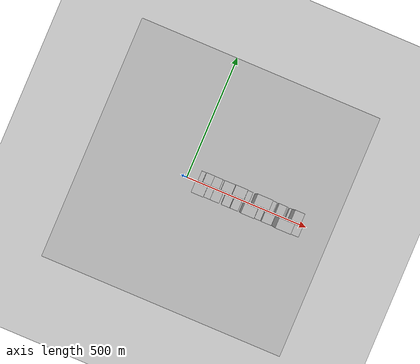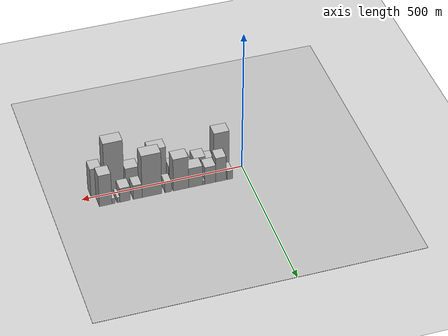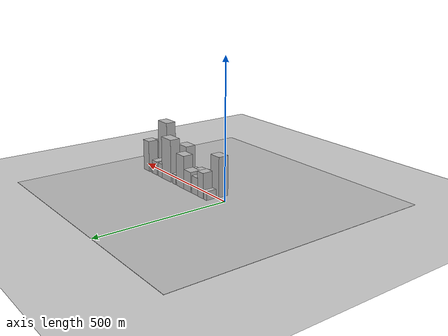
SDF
<?xml version="1.0" encoding="utf-8"?>

<sdf version="1.6">

   <world name="default">

      <gui fullscreen="0">

         <camera name="user_camera">

            <pose>-15 0 4.57585 0 0 0</pose>

            <view_controller>orbit</view_controller>

         </camera>

      </gui>

      <scene>

         <sky>

           <clouds>

             <speed>12</speed>

           </clouds>

         </sky>

         <ambient>0.4 0.4 0.4 1</ambient>

         <background>0.7 0.7 0.7 1</background>

         <shadows>1</shadows>

      </scene>

      <gravity>0 0 -9.8066</gravity>

      <magnetic_field>6e-06 2.3e-05 -4.2e-05</magnetic_field>

      <physics default="0" name="default_physics" type="ode">

         <ode>

            <solver>

               <type>quick</type>

               <iters>10</iters>

               <sor>1.0</sor>

               <use_dynamic_moi_rescaling>0</use_dynamic_moi_rescaling>

            </solver>

            <constraints>

               <cfm>0</cfm>

               <erp>0.2</erp>

               <contact_max_correcting_vel>100</contact_max_correcting_vel>

               <contact_surface_layer>0.001</contact_surface_layer>

            </constraints>

         </ode>

         <max_step_size>0.004</max_step_size>

         <real_time_factor>1</real_time_factor>

         <real_time_update_rate>250</real_time_update_rate>

      </physics>

      <light name="sun" type="directional">

         <cast_shadows>1</cast_shadows>

         <pose>0 0 10 0 0 0</pose>

         <diffuse>0.8 0.8 0.8 1</diffuse>

         <specular>0.2 0.2 0.2 1</specular>

         <attenuation>

            <range>1000</range>

            <constant>0.9</constant>

            <linear>0.01</linear>

            <quadratic>0.001</quadratic>

         </attenuation>

         <direction>-0.5 0.1 -0.9</direction>

      </light>

      <include>

         <name>ground_plane_1</name>

         <uri>model://HANNAS_ground_plane</uri>

         <pose>0 0 0  0 0 0</pose>

      </include>

      <include>

         <name>ground_plane_2</name>

         <uri>model://HANNAS_ground_plane</uri>

         <pose>100 0 0  0 0 0</pose>

      </include>

      <model name="building_1">

         <static>1</static>

         <pose frame="">53.0184 24.5000 0 0.000000 0.000000 1.570796</pose>

         <link name="link">

            <pose frame="">0 0 16.50 0 0 0</pose>

            <collision name="collision">

               <geometry>

                  <box>

                     <size>40.0000 18.0367 33.0000</size>

                  </box>

               </geometry>

               <max_contacts>10</max_contacts>

               <surface>

                  <contact>

                     <ode/>

                  </contact>

                  <bounce/>

                  <friction>

                     <torsional>

                        <ode/>

                     </torsional>

                     <ode/>

                  </friction>

               </surface>

            </collision>

            <visual name="visual">

               <cast_shadows>0</cast_shadows>

               <geometry>

                  <box>

                     <size>40.0000 18.0367 33.0000</size>

                  </box>

               </geometry>

               <material>

                  <script>

                     <uri>model://HANNAS_wall/materials/scripts</uri>

                     <uri>model://HANNAS_wall/materials/textures</uri>

                     <name>vrc/HANNAS_wall</name>

                  </script>

               </material>

            </visual>

            <self_collide>0</self_collide>

            <enable_wind>0</enable_wind>

            <kinematic>0</kinematic>

         </link>

      </model>

      <model name="building_2">

         <static>1</static>

         <pose frame="">81.3368 24.5000 0 0.000000 0.000000 1.570796</pose>

         <link name="link">

            <pose frame="">0 0 46.50 0 0 0</pose>

            <collision name="collision">

               <geometry>

                  <box>

                     <size>40.0000 32.6002 93.0000</size>

                  </box>

               </geometry>

               <max_contacts>10</max_contacts>

               <surface>

                  <contact>

                     <ode/>

                  </contact>

                  <bounce/>

                  <friction>

                     <torsional>

                        <ode/>

                     </torsional>

                     <ode/>

                  </friction>

               </surface>

            </collision>

            <visual name="visual">

               <cast_shadows>0</cast_shadows>

               <geometry>

                  <box>

                     <size>40.0000 32.6002 93.0000</size>

                  </box>

               </geometry>

               <material>

                  <script>

                     <uri>model://HANNAS_wall/materials/scripts</uri>

                     <uri>model://HANNAS_wall/materials/textures</uri>

                     <name>vrc/HANNAS_wall</name>

                  </script>

               </material>

            </visual>

            <self_collide>0</self_collide>

            <enable_wind>0</enable_wind>

            <kinematic>0</kinematic>

         </link>

      </model>

      <model name="building_3">

         <static>1</static>

         <pose frame="">114.7060 24.5000 0 0.000000 0.000000 1.570796</pose>

         <link name="link">

            <pose frame="">0 0 33.00 0 0 0</pose>

            <collision name="collision">

               <geometry>

                  <box>

                     <size>40.0000 34.1382 66.0000</size>

                  </box>

               </geometry>

               <max_contacts>10</max_contacts>

               <surface>

                  <contact>

                     <ode/>

                  </contact>

                  <bounce/>

                  <friction>

                     <torsional>

                        <ode/>

                     </torsional>

                     <ode/>

                  </friction>

               </surface>

            </collision>

            <visual name="visual">

               <cast_shadows>0</cast_shadows>

               <geometry>

                  <box>

                     <size>40.0000 34.1382 66.0000</size>

                  </box>

               </geometry>

               <material>

                  <script>

                     <uri>model://HANNAS_wall/materials/scripts</uri>

                     <uri>model://HANNAS_wall/materials/textures</uri>

                     <name>vrc/HANNAS_wall</name>

                  </script>

               </material>

            </visual>

            <self_collide>0</self_collide>

            <enable_wind>0</enable_wind>

            <kinematic>0</kinematic>

         </link>

      </model>

      <model name="building_4">

         <static>1</static>

         <pose frame="">135.4012 24.5000 0 0.000000 0.000000 1.570796</pose>

         <link name="link">

            <pose frame="">0 0 7.50 0 0 0</pose>

            <collision name="collision">

               <geometry>

                  <box>

                     <size>40.0000 7.2523 15.0000</size>

                  </box>

               </geometry>

               <max_contacts>10</max_contacts>

               <surface>

                  <contact>

                     <ode/>

                  </contact>

                  <bounce/>

                  <friction>

                     <torsional>

                        <ode/>

                     </torsional>

                     <ode/>

                  </friction>

               </surface>

            </collision>

            <visual name="visual">

               <cast_shadows>0</cast_shadows>

               <geometry>

                  <box>

                     <size>40.0000 7.2523 15.0000</size>

                  </box>

               </geometry>

               <material>

                  <script>

                     <uri>model://HANNAS_wall/materials/scripts</uri>

                     <uri>model://HANNAS_wall/materials/textures</uri>

                     <name>vrc/HANNAS_wall</name>

                  </script>

               </material>

            </visual>

            <self_collide>0</self_collide>

            <enable_wind>0</enable_wind>

            <kinematic>0</kinematic>

         </link>

      </model>

      <model name="building_5">

         <static>1</static>

         <pose frame="">160.9136 24.5000 0 0.000000 0.000000 1.570796</pose>

         <link name="link">

            <pose frame="">0 0 37.50 0 0 0</pose>

            <collision name="collision">

               <geometry>

                  <box>

                     <size>40.0000 43.7724 75.0000</size>

                  </box>

               </geometry>

               <max_contacts>10</max_contacts>

               <surface>

                  <contact>

                     <ode/>

                  </contact>

                  <bounce/>

                  <friction>

                     <torsional>

                        <ode/>

                     </torsional>

                     <ode/>

                  </friction>

               </surface>

            </collision>

            <visual name="visual">

               <cast_shadows>0</cast_shadows>

               <geometry>

                  <box>

                     <size>40.0000 43.7724 75.0000</size>

                  </box>

               </geometry>

               <material>

                  <script>

                     <uri>model://HANNAS_wall/materials/scripts</uri>

                     <uri>model://HANNAS_wall/materials/textures</uri>

                     <name>vrc/HANNAS_wall</name>

                  </script>

               </material>

            </visual>

            <self_collide>0</self_collide>

            <enable_wind>0</enable_wind>

            <kinematic>0</kinematic>

         </link>

      </model>

      <model name="building_6">

         <static>1</static>

         <pose frame="">206.5788 24.5000 0 0.000000 0.000000 1.570796</pose>

         <link name="link">

            <pose frame="">0 0 61.50 0 0 0</pose>

            <collision name="collision">

               <geometry>

                  <box>

                     <size>40.0000 47.5581 123.0000</size>

                  </box>

               </geometry>

               <max_contacts>10</max_contacts>

               <surface>

                  <contact>

                     <ode/>

                  </contact>

                  <bounce/>

                  <friction>

                     <torsional>

                        <ode/>

                     </torsional>

                     <ode/>

                  </friction>

               </surface>

            </collision>

            <visual name="visual">

               <cast_shadows>0</cast_shadows>

               <geometry>

                  <box>

                     <size>40.0000 47.5581 123.0000</size>

                  </box>

               </geometry>

               <material>

                  <script>

                     <uri>model://HANNAS_wall/materials/scripts</uri>

                     <uri>model://HANNAS_wall/materials/textures</uri>

                     <name>vrc/HANNAS_wall</name>

                  </script>

               </material>

            </visual>

            <self_collide>0</self_collide>

            <enable_wind>0</enable_wind>

            <kinematic>0</kinematic>

         </link>

      </model>

      <model name="building_7">

         <static>1</static>

         <pose frame="">245.8811 24.5000 0 0.000000 0.000000 1.570796</pose>

         <link name="link">

            <pose frame="">0 0 19.50 0 0 0</pose>

            <collision name="collision">

               <geometry>

                  <box>

                     <size>40.0000 21.0465 39.0000</size>

                  </box>

               </geometry>

               <max_contacts>10</max_contacts>

               <surface>

                  <contact>

                     <ode/>

                  </contact>

                  <bounce/>

                  <friction>

                     <torsional>

                        <ode/>

                     </torsional>

                     <ode/>

                  </friction>

               </surface>

            </collision>

            <visual name="visual">

               <cast_shadows>0</cast_shadows>

               <geometry>

                  <box>

                     <size>40.0000 21.0465 39.0000</size>

                  </box>

               </geometry>

               <material>

                  <script>

                     <uri>model://HANNAS_wall/materials/scripts</uri>

                     <uri>model://HANNAS_wall/materials/textures</uri>

                     <name>vrc/HANNAS_wall</name>

                  </script>

               </material>

            </visual>

            <self_collide>0</self_collide>

            <enable_wind>0</enable_wind>

            <kinematic>0</kinematic>

         </link>

      </model>

      <model name="building_8">

         <static>1</static>

         <pose frame="">296.7148 24.5000 0 0.000000 0.000000 1.570796</pose>

         <link name="link">

            <pose frame="">0 0 81.00 0 0 0</pose>

            <collision name="collision">

               <geometry>

                  <box>

                     <size>40.0000 60.6208 162.0000</size>

                  </box>

               </geometry>

               <max_contacts>10</max_contacts>

               <surface>

                  <contact>

                     <ode/>

                  </contact>

                  <bounce/>

                  <friction>

                     <torsional>

                        <ode/>

                     </torsional>

                     <ode/>

                  </friction>

               </surface>

            </collision>

            <visual name="visual">

               <cast_shadows>0</cast_shadows>

               <geometry>

                  <box>

                     <size>40.0000 60.6208 162.0000</size>

                  </box>

               </geometry>

               <material>

                  <script>

                     <uri>model://HANNAS_wall/materials/scripts</uri>

                     <uri>model://HANNAS_wall/materials/textures</uri>

                     <name>vrc/HANNAS_wall</name>

                  </script>

               </material>

            </visual>

            <self_collide>0</self_collide>

            <enable_wind>0</enable_wind>

            <kinematic>0</kinematic>

         </link>

      </model>

      <model name="building_9">

         <static>1</static>

         <pose frame="">340.6502 24.5000 0 0.000000 0.000000 1.570796</pose>

         <link name="link">

            <pose frame="">0 0 27.00 0 0 0</pose>

            <collision name="collision">

               <geometry>

                  <box>

                     <size>40.0000 27.2500 54.0000</size>

                  </box>

               </geometry>

               <max_contacts>10</max_contacts>

               <surface>

                  <contact>

                     <ode/>

                  </contact>

                  <bounce/>

                  <friction>

                     <torsional>

                        <ode/>

                     </torsional>

                     <ode/>

                  </friction>

               </surface>

            </collision>

            <visual name="visual">

               <cast_shadows>0</cast_shadows>

               <geometry>

                  <box>

                     <size>40.0000 27.2500 54.0000</size>

                  </box>

               </geometry>

               <material>

                  <script>

                     <uri>model://HANNAS_wall/materials/scripts</uri>

                     <uri>model://HANNAS_wall/materials/textures</uri>

                     <name>vrc/HANNAS_wall</name>

                  </script>

               </material>

            </visual>

            <self_collide>0</self_collide>

            <enable_wind>0</enable_wind>

            <kinematic>0</kinematic>

         </link>

      </model>

      <model name="building_10">

         <static>1</static>

         <pose frame="">379.3620 24.5000 0 0.000000 0.000000 1.570796</pose>

         <link name="link">

            <pose frame="">0 0 27.00 0 0 0</pose>

            <collision name="collision">

               <geometry>

                  <box>

                     <size>40.0000 32.1737 54.0000</size>

                  </box>

               </geometry>

               <max_contacts>10</max_contacts>

               <surface>

                  <contact>

                     <ode/>

                  </contact>

                  <bounce/>

                  <friction>

                     <torsional>

                        <ode/>

                     </torsional>

                     <ode/>

                  </friction>

               </surface>

            </collision>

            <visual name="visual">

               <cast_shadows>0</cast_shadows>

               <geometry>

                  <box>

                     <size>40.0000 32.1737 54.0000</size>

                  </box>

               </geometry>

               <material>

                  <script>

                     <uri>model://HANNAS_wall/materials/scripts</uri>

                     <uri>model://HANNAS_wall/materials/textures</uri>

                     <name>vrc/HANNAS_wall</name>

                  </script>

               </material>

            </visual>

            <self_collide>0</self_collide>

            <enable_wind>0</enable_wind>

            <kinematic>0</kinematic>

         </link>

      </model>

      <model name="building_11">

         <static>1</static>

         <pose frame="">399.7748 24.5000 0 0.000000 0.000000 1.570796</pose>

         <link name="link">

            <pose frame="">0 0 10.50 0 0 0</pose>

            <collision name="collision">

               <geometry>

                  <box>

                     <size>40.0000 8.6518 21.0000</size>

                  </box>

               </geometry>

               <max_contacts>10</max_contacts>

               <surface>

                  <contact>

                     <ode/>

                  </contact>

                  <bounce/>

                  <friction>

                     <torsional>

                        <ode/>

                     </torsional>

                     <ode/>

                  </friction>

               </surface>

            </collision>

            <visual name="visual">

               <cast_shadows>0</cast_shadows>

               <geometry>

                  <box>

                     <size>40.0000 8.6518 21.0000</size>

                  </box>

               </geometry>

               <material>

                  <script>

                     <uri>model://HANNAS_wall/materials/scripts</uri>

                     <uri>model://HANNAS_wall/materials/textures</uri>

                     <name>vrc/HANNAS_wall</name>

                  </script>

               </material>

            </visual>

            <self_collide>0</self_collide>

            <enable_wind>0</enable_wind>

            <kinematic>0</kinematic>

         </link>

      </model>

      <model name="building_12">

         <static>1</static>

         <pose frame="">414.9263 24.5000 0 0.000000 0.000000 1.570796</pose>

         <link name="link">

            <pose frame="">0 0 10.50 0 0 0</pose>

            <collision name="collision">

               <geometry>

                  <box>

                     <size>40.0000 9.6511 21.0000</size>

                  </box>

               </geometry>

               <max_contacts>10</max_contacts>

               <surface>

                  <contact>

                     <ode/>

                  </contact>

                  <bounce/>

                  <friction>

                     <torsional>

                        <ode/>

                     </torsional>

                     <ode/>

                  </friction>

               </surface>

            </collision>

            <visual name="visual">

               <cast_shadows>0</cast_shadows>

               <geometry>

                  <box>

                     <size>40.0000 9.6511 21.0000</size>

                  </box>

               </geometry>

               <material>

                  <script>

                     <uri>model://HANNAS_wall/materials/scripts</uri>

                     <uri>model://HANNAS_wall/materials/textures</uri>

                     <name>vrc/HANNAS_wall</name>

                  </script>

               </material>

            </visual>

            <self_collide>0</self_collide>

            <enable_wind>0</enable_wind>

            <kinematic>0</kinematic>

         </link>

      </model>

      <model name="building_13">

         <static>1</static>

         <pose frame="">439.0455 24.5000 0 0.000000 0.000000 1.570796</pose>

         <link name="link">

            <pose frame="">0 0 60.00 0 0 0</pose>

            <collision name="collision">

               <geometry>

                  <box>

                     <size>40.0000 38.5873 120.0000</size>

                  </box>

               </geometry>

               <max_contacts>10</max_contacts>

               <surface>

                  <contact>

                     <ode/>

                  </contact>

                  <bounce/>

                  <friction>

                     <torsional>

                        <ode/>

                     </torsional>

                     <ode/>

                  </friction>

               </surface>

            </collision>

            <visual name="visual">

               <cast_shadows>0</cast_shadows>

               <geometry>

                  <box>

                     <size>40.0000 38.5873 120.0000</size>

                  </box>

               </geometry>

               <material>

                  <script>

                     <uri>model://HANNAS_wall/materials/scripts</uri>

                     <uri>model://HANNAS_wall/materials/textures</uri>

                     <name>vrc/HANNAS_wall</name>

                  </script>

               </material>

            </visual>

            <self_collide>0</self_collide>

            <enable_wind>0</enable_wind>

            <kinematic>0</kinematic>

         </link>

      </model>

      <model name="building_14">

         <static>1</static>

         <pose frame="">64.1071 -24.5000 0 0.000000 0.000000 1.570796</pose>

         <link name="link">

            <pose frame="">0 0 73.50 0 0 0</pose>

            <collision name="collision">

               <geometry>

                  <box>

                     <size>40.0000 48.2143 147.0000</size>

                  </box>

               </geometry>

               <max_contacts>10</max_contacts>

               <surface>

                  <contact>

                     <ode/>

                  </contact>

                  <bounce/>

                  <friction>

                     <torsional>

                        <ode/>

                     </torsional>

                     <ode/>

                  </friction>

               </surface>

            </collision>

            <visual name="visual">

               <cast_shadows>0</cast_shadows>

               <geometry>

                  <box>

                     <size>40.0000 48.2143 147.0000</size>

                  </box>

               </geometry>

               <material>

                  <script>

                     <uri>model://HANNAS_wall/materials/scripts</uri>

                     <uri>model://HANNAS_wall/materials/textures</uri>

                     <name>vrc/HANNAS_wall</name>

                  </script>

               </material>

            </visual>

            <self_collide>0</self_collide>

            <enable_wind>0</enable_wind>

            <kinematic>0</kinematic>

         </link>

      </model>

      <model name="building_15">

         <static>1</static>

         <pose frame="">101.4823 -24.5000 0 0.000000 0.000000 1.570796</pose>

         <link name="link">

            <pose frame="">0 0 25.50 0 0 0</pose>

            <collision name="collision">

               <geometry>

                  <box>

                     <size>40.0000 26.5360 51.0000</size>

                  </box>

               </geometry>

               <max_contacts>10</max_contacts>

               <surface>

                  <contact>

                     <ode/>

                  </contact>

                  <bounce/>

                  <friction>

                     <torsional>

                        <ode/>

                     </torsional>

                     <ode/>

                  </friction>

               </surface>

            </collision>

            <visual name="visual">

               <cast_shadows>0</cast_shadows>

               <geometry>

                  <box>

                     <size>40.0000 26.5360 51.0000</size>

                  </box>

               </geometry>

               <material>

                  <script>

                     <uri>model://HANNAS_wall/materials/scripts</uri>

                     <uri>model://HANNAS_wall/materials/textures</uri>

                     <name>vrc/HANNAS_wall</name>

                  </script>

               </material>

            </visual>

            <self_collide>0</self_collide>

            <enable_wind>0</enable_wind>

            <kinematic>0</kinematic>

         </link>

      </model>

      <model name="building_16">

         <static>1</static>

         <pose frame="">133.0016 -24.5000 0 0.000000 0.000000 1.570796</pose>

         <link name="link">

            <pose frame="">0 0 33.00 0 0 0</pose>

            <collision name="collision">

               <geometry>

                  <box>

                     <size>40.0000 36.5025 66.0000</size>

                  </box>

               </geometry>

               <max_contacts>10</max_contacts>

               <surface>

                  <contact>

                     <ode/>

                  </contact>

                  <bounce/>

                  <friction>

                     <torsional>

                        <ode/>

                     </torsional>

                     <ode/>

                  </friction>

               </surface>

            </collision>

            <visual name="visual">

               <cast_shadows>0</cast_shadows>

               <geometry>

                  <box>

                     <size>40.0000 36.5025 66.0000</size>

                  </box>

               </geometry>

               <material>

                  <script>

                     <uri>model://HANNAS_wall/materials/scripts</uri>

                     <uri>model://HANNAS_wall/materials/textures</uri>

                     <name>vrc/HANNAS_wall</name>

                  </script>

               </material>

            </visual>

            <self_collide>0</self_collide>

            <enable_wind>0</enable_wind>

            <kinematic>0</kinematic>

         </link>

      </model>

      <model name="building_17">

         <static>1</static>

         <pose frame="">177.8374 -24.5000 0 0.000000 0.000000 1.570796</pose>

         <link name="link">

            <pose frame="">0 0 31.50 0 0 0</pose>

            <collision name="collision">

               <geometry>

                  <box>

                     <size>40.0000 33.1692 63.0000</size>

                  </box>

               </geometry>

               <max_contacts>10</max_contacts>

               <surface>

                  <contact>

                     <ode/>

                  </contact>

                  <bounce/>

                  <friction>

                     <torsional>

                        <ode/>

                     </torsional>

                     <ode/>

                  </friction>

               </surface>

            </collision>

            <visual name="visual">

               <cast_shadows>0</cast_shadows>

               <geometry>

                  <box>

                     <size>40.0000 33.1692 63.0000</size>

                  </box>

               </geometry>

               <material>

                  <script>

                     <uri>model://HANNAS_wall/materials/scripts</uri>

                     <uri>model://HANNAS_wall/materials/textures</uri>

                     <name>vrc/HANNAS_wall</name>

                  </script>

               </material>

            </visual>

            <self_collide>0</self_collide>

            <enable_wind>0</enable_wind>

            <kinematic>0</kinematic>

         </link>

      </model>

      <model name="building_18">

         <static>1</static>

         <pose frame="">213.4440 -24.5000 0 0.000000 0.000000 1.570796</pose>

         <link name="link">

            <pose frame="">0 0 27.00 0 0 0</pose>

            <collision name="collision">

               <geometry>

                  <box>

                     <size>40.0000 32.0440 54.0000</size>

                  </box>

               </geometry>

               <max_contacts>10</max_contacts>

               <surface>

                  <contact>

                     <ode/>

                  </contact>

                  <bounce/>

                  <friction>

                     <torsional>

                        <ode/>

                     </torsional>

                     <ode/>

                  </friction>

               </surface>

            </collision>

            <visual name="visual">

               <cast_shadows>0</cast_shadows>

               <geometry>

                  <box>

                     <size>40.0000 32.0440 54.0000</size>

                  </box>

               </geometry>

               <material>

                  <script>

                     <uri>model://HANNAS_wall/materials/scripts</uri>

                     <uri>model://HANNAS_wall/materials/textures</uri>

                     <name>vrc/HANNAS_wall</name>

                  </script>

               </material>

            </visual>

            <self_collide>0</self_collide>

            <enable_wind>0</enable_wind>

            <kinematic>0</kinematic>

         </link>

      </model>

      <model name="building_19">

         <static>1</static>

         <pose frame="">263.8789 -24.5000 0 0.000000 0.000000 1.570796</pose>

         <link name="link">

            <pose frame="">0 0 67.50 0 0 0</pose>

            <collision name="collision">

               <geometry>

                  <box>

                     <size>40.0000 52.8258 135.0000</size>

                  </box>

               </geometry>

               <max_contacts>10</max_contacts>

               <surface>

                  <contact>

                     <ode/>

                  </contact>

                  <bounce/>

                  <friction>

                     <torsional>

                        <ode/>

                     </torsional>

                     <ode/>

                  </friction>

               </surface>

            </collision>

            <visual name="visual">

               <cast_shadows>0</cast_shadows>

               <geometry>

                  <box>

                     <size>40.0000 52.8258 135.0000</size>

                  </box>

               </geometry>

               <material>

                  <script>

                     <uri>model://HANNAS_wall/materials/scripts</uri>

                     <uri>model://HANNAS_wall/materials/textures</uri>

                     <name>vrc/HANNAS_wall</name>

                  </script>

               </material>

            </visual>

            <self_collide>0</self_collide>

            <enable_wind>0</enable_wind>

            <kinematic>0</kinematic>

         </link>

      </model>

      <model name="building_20">

         <static>1</static>

         <pose frame="">310.8146 -24.5000 0 0.000000 0.000000 1.570796</pose>

         <link name="link">

            <pose frame="">0 0 21.00 0 0 0</pose>

            <collision name="collision">

               <geometry>

                  <box>

                     <size>40.0000 25.0458 42.0000</size>

                  </box>

               </geometry>

               <max_contacts>10</max_contacts>

               <surface>

                  <contact>

                     <ode/>

                  </contact>

                  <bounce/>

                  <friction>

                     <torsional>

                        <ode/>

                     </torsional>

                     <ode/>

                  </friction>

               </surface>

            </collision>

            <visual name="visual">

               <cast_shadows>0</cast_shadows>

               <geometry>

                  <box>

                     <size>40.0000 25.0458 42.0000</size>

                  </box>

               </geometry>

               <material>

                  <script>

                     <uri>model://HANNAS_wall/materials/scripts</uri>

                     <uri>model://HANNAS_wall/materials/textures</uri>

                     <name>vrc/HANNAS_wall</name>

                  </script>

               </material>

            </visual>

            <self_collide>0</self_collide>

            <enable_wind>0</enable_wind>

            <kinematic>0</kinematic>

         </link>

      </model>

      <model name="building_21">

         <static>1</static>

         <pose frame="">343.7948 -24.5000 0 0.000000 0.000000 1.570796</pose>

         <link name="link">

            <pose frame="">0 0 40.50 0 0 0</pose>

            <collision name="collision">

               <geometry>

                  <box>

                     <size>40.0000 40.9146 81.0000</size>

                  </box>

               </geometry>

               <max_contacts>10</max_contacts>

               <surface>

                  <contact>

                     <ode/>

                  </contact>

                  <bounce/>

                  <friction>

                     <torsional>

                        <ode/>

                     </torsional>

                     <ode/>

                  </friction>

               </surface>

            </collision>

            <visual name="visual">

               <cast_shadows>0</cast_shadows>

               <geometry>

                  <box>

                     <size>40.0000 40.9146 81.0000</size>

                  </box>

               </geometry>

               <material>

                  <script>

                     <uri>model://HANNAS_wall/materials/scripts</uri>

                     <uri>model://HANNAS_wall/materials/textures</uri>

                     <name>vrc/HANNAS_wall</name>

                  </script>

               </material>

            </visual>

            <self_collide>0</self_collide>

            <enable_wind>0</enable_wind>

            <kinematic>0</kinematic>

         </link>

      </model>

      <model name="building_22">

         <static>1</static>

         <pose frame="">398.1560 -24.5000 0 0.000000 0.000000 1.570796</pose>

         <link name="link">

            <pose frame="">0 0 97.50 0 0 0</pose>

            <collision name="collision">

               <geometry>

                  <box>

                     <size>40.0000 59.8078 195.0000</size>

                  </box>

               </geometry>

               <max_contacts>10</max_contacts>

               <surface>

                  <contact>

                     <ode/>

                  </contact>

                  <bounce/>

                  <friction>

                     <torsional>

                        <ode/>

                     </torsional>

                     <ode/>

                  </friction>

               </surface>

            </collision>

            <visual name="visual">

               <cast_shadows>0</cast_shadows>

               <geometry>

                  <box>

                     <size>40.0000 59.8078 195.0000</size>

                  </box>

               </geometry>

               <material>

                  <script>

                     <uri>model://HANNAS_wall/materials/scripts</uri>

                     <uri>model://HANNAS_wall/materials/textures</uri>

                     <name>vrc/HANNAS_wall</name>

                  </script>

               </material>

            </visual>

            <self_collide>0</self_collide>

            <enable_wind>0</enable_wind>

            <kinematic>0</kinematic>

         </link>

      </model>

      <model name="building_23">

         <static>1</static>

         <pose frame="">453.4718 -24.5000 0 0.000000 0.000000 1.570796</pose>

         <link name="link">

            <pose frame="">0 0 54.00 0 0 0</pose>

            <collision name="collision">

               <geometry>

                  <box>

                     <size>40.0000 34.8239 108.0000</size>

                  </box>

               </geometry>

               <max_contacts>10</max_contacts>

               <surface>

                  <contact>

                     <ode/>

                  </contact>

                  <bounce/>

                  <friction>

                     <torsional>

                        <ode/>

                     </torsional>

                     <ode/>

                  </friction>

               </surface>

            </collision>

            <visual name="visual">

               <cast_shadows>0</cast_shadows>

               <geometry>

                  <box>

                     <size>40.0000 34.8239 108.0000</size>

                  </box>

               </geometry>

               <material>

                  <script>

                     <uri>model://HANNAS_wall/materials/scripts</uri>

                     <uri>model://HANNAS_wall/materials/textures</uri>

                     <name>vrc/HANNAS_wall</name>

                  </script>

               </material>

            </visual>

            <self_collide>0</self_collide>

            <enable_wind>0</enable_wind>

            <kinematic>0</kinematic>

         </link>

      </model>

   </world>

</sdf>

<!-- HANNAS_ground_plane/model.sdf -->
<sdf version="1.4">
<model name="HANNAS_ground_plane">
  <static>true</static>
    <link name="link">
      <collision name="collision">
        <geometry>
          <plane>
            <normal>0 0 1</normal>
            <size>1000 1000</size>
          </plane>
        </geometry>
        <surface>
          <friction>
            <ode>
              <mu>100</mu>
              <mu2>50</mu2>
            </ode>
          </friction>
        </surface>
      </collision>
      <visual name="visual">
        <cast_shadows>false</cast_shadows>
        <geometry>
          <plane>
            <normal>0 0 1</normal>
            <size>1000 1000</size>
          </plane>
        </geometry>
        <material>
          <script>
            <uri>model://HANNAS_ground_plane/materials/scripts/HANNAS_ground_plane.material</uri>
	    <uri>model://HANNAS_ground_plane/materials/textures</uri>
            <name>HANNASGroundPlane/Image</name>
          </script>
        </material>
      </visual>
    </link>
  </model>
</sdf>
